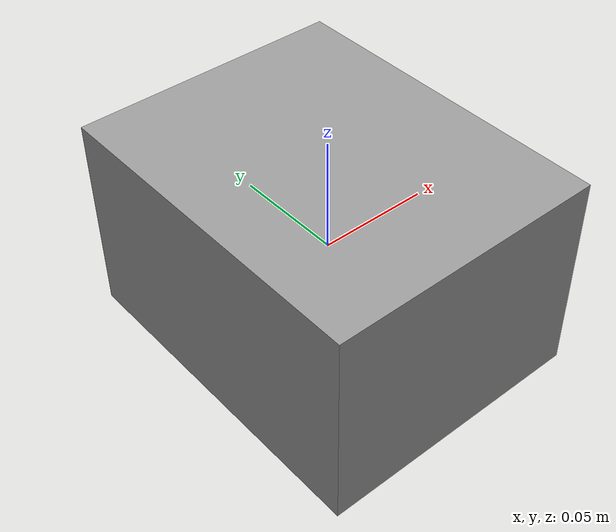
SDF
<?xml version="1.0" ?>

<sdf version="1.5">
  <model name="prisma_rect">
    <static>false</static>
    <link name="link0">
      <collision name="collision">
        <geometry>
          <box>
            <size> 0.12 0.15 0.09</size>
          </box>
        </geometry>
        <surface>
            <friction>
                <ode>
                    <mu>0.99</mu>
                    <mu2>0.99</mu2>
                </ode>
            </friction>
        </surface>
      </collision>
      <visual name="visual">
        <geometry>
          <box>
            <size> 0.12 0.15 0.09</size>
          </box>
        </geometry>
        <material>
            <script>
                <uri>file://media/materials/scripts/gazebo.material</uri>
                <name>Gazebo/Grey</name>
            </script>
        </material>
      </visual>
	  <inertial>
		<mass>0.05</mass>
		<inertia>
		  <ixx>0.0001275</ixx>
		  <ixy>0.0</ixy>
		  <ixz>0.0</ixz>
		  <iyy>0.00009375</iyy>
		  <iyz>0.0</iyz>
		  <izz>0.00015375</izz>
		</inertia>
  	</inertial>
    </link>
  </model>
</sdf>
